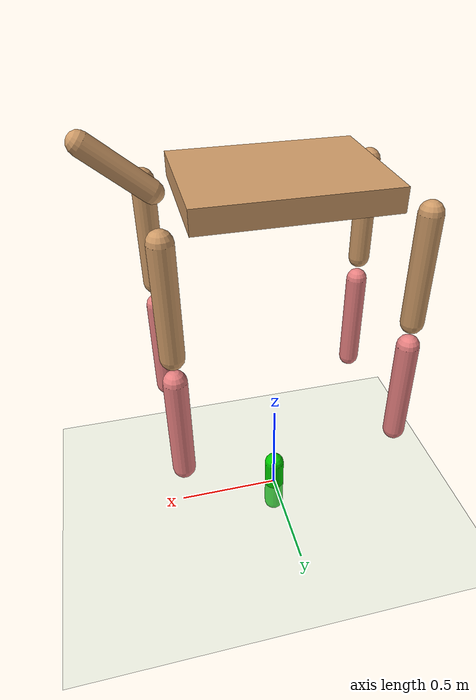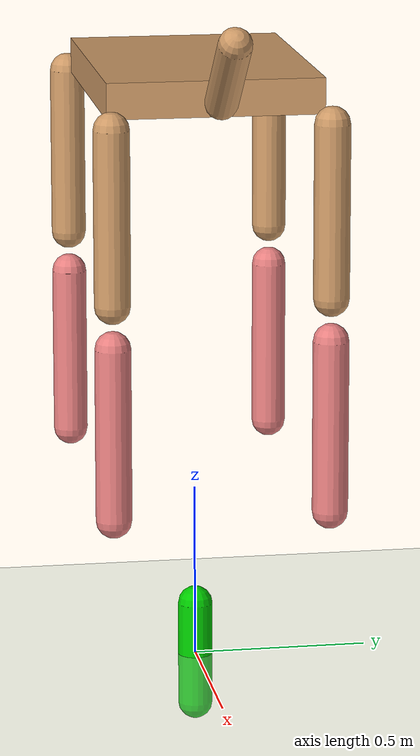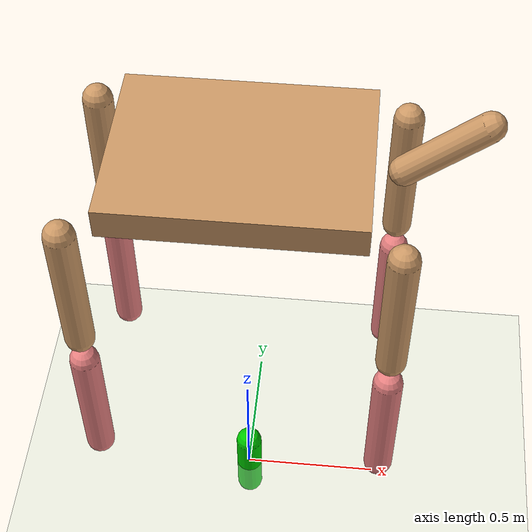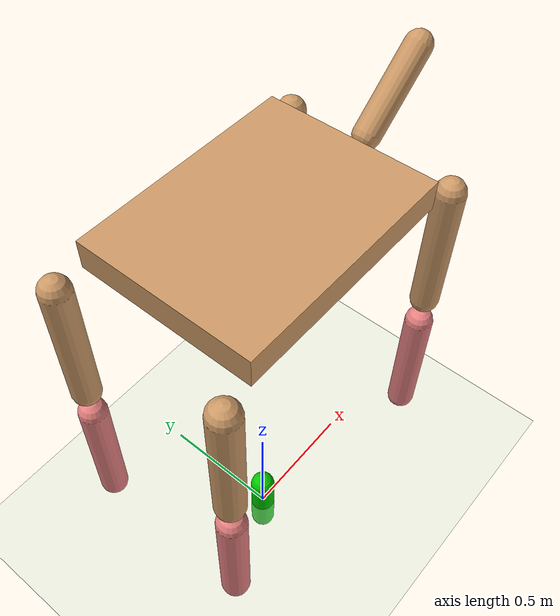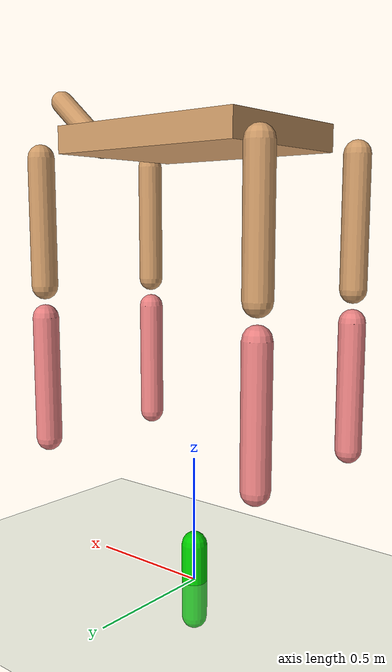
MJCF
<mujoco model="cheetah">
  <compiler angle="radian" coordinate="local" inertiafromgeom="true" settotalmass="14"/>
  <default>
    <joint armature=".1" damping=".01" limited="true" solimplimit="0 .8 .03" solreflimit=".02 1" stiffness="0"/>
    <geom conaffinity="0" condim="3" contype="1" friction=".4 .1 .1" rgba="0.8 0.6 .4 1" solimp="0.0 0.8 0.01" solref="0.02 1"/>
    <motor gear="50" ctrllimited="true" ctrlrange="-1 1"/>
  </default>
  <size nstack="300000" nuser_geom="1"/>
  <option gravity="0 0 -9.81" timestep="0.02"/>
  <asset>
    <texture builtin="gradient" height="100" rgb1="1 1 1" rgb2="0 0 0" type="skybox" width="100"/>
    <texture builtin="flat" height="1278" mark="cross" markrgb="1 1 1" name="texgeom" random="0.01" rgb1="0.8 0.6 0.4" rgb2="0.8 0.6 0.4" type="cube" width="127"/>
    <texture builtin="checker" height="100" name="texplane" rgb1="0 0 0" rgb2="0.8 0.8 0.8" type="2d" width="100"/>
    <material name="MatPlane" reflectance="0.5" shininess="1" specular="1" texrepeat="60 60" texture="texplane"/>
    <material name="geom" texture="texgeom" texuniform="true"/>
  </asset>
  <worldbody>
    <light cutoff="100" diffuse="1 1 1" dir="-0 0 -1.3" directional="true" exponent="1" pos="0 0 1.3" specular=".1 .1 .1"/>
    <geom conaffinity="1" condim="3" material="MatPlane" name="floor" pos="0 0 0" rgba="0.8 0.9 0.8 1" size="40 40 40" type="plane"/>

    <body name="current_vel_lin" pos="0 0 0">
      <geom conaffinity="8" contype="4" axisangle="1 0 0 0" name="current_vel_lin" pos="0 0 0" size="0.05 .15" type="capsule" rgba="0 0.8 0 1"/>
    </body>

    <body name="current_vel_rot" pos="0 0 0">
      <geom conaffinity="8" contype="4" axisangle="1 0 0 0" name="current_vel_rot" pos="0 0 0" size="0.05 .15" type="capsule" rgba="0.8 0.8 0 1"/>
    </body>

    <body name="target_vel_lin" pos="0 0 0">
      <geom conaffinity="8" contype="4" axisangle="1 0 0 0" name="target_vel_lin" pos="0 0 0" size="0.05 .15" type="capsule" rgba="0 0 0.8 1"/>
    </body>

    <body name="target_vel_rot" pos="0 0 0">
      <geom conaffinity="8" contype="4" axisangle="1 0 0 0" name="target_vel_rot" pos="0 0 0" size="0.05 .15" type="capsule" rgba="0.8 0 0.8 1"/>
    </body>

    <body name="torso" pos="0 0 1.7">
      <camera name="track" mode="trackcom" pos="0 -3 0.3" xyaxes="1 0 0 0 0 1"/>
      <joint armature="0" axis="1 0 0" damping="0" limited="false" name="root" pos="0 0 0" type="free"/>
      <geom name="torso" size=".4 .3 .05" type="box"/>
      <geom axisangle="0 1 0 .87" name="head" pos=".6 0 .1" size="0.046 .15" type="capsule"/>

      <body name="leg1_top" pos="-.5 .3 0">
        <joint axis="1 0 0" damping="6" name="leg1_top_side" pos="0 0 0" range="-1 1" type="hinge"/>
        <joint axis="0 1 0" damping="6" name="leg1_top_fwd" pos="0 0 0" range="-1 1" type="hinge"/>
        <geom axisangle="0 1 0 0" name="leg1_top" pos="0 0 -0.3" size="0.05 .24" type="capsule"/>
        <body name="leg1_mid" pos="0 0 -0.6">
          <joint axis="0 1 0" damping="6" name="leg1_mid" pos="0 0 0" range="-1 1" type="hinge"/>
          <geom axisangle="0 1 0 0" name="leg1_mid" pos="0 0 -0.3" rgba="0.9 0.5 0.5 1" size="0.05 .24" type="capsule"/>
        </body>
      </body>

      <body name="leg2_top" pos="-.5 -.3 0">
        <joint axis="1 0 0" damping="6" name="leg2_top_side" pos="0 0 0" range="-1 1" type="hinge"/>
        <joint axis="0 1 0" damping="6" name="leg2_top_fwd" pos="0 0 0" range="-1 1" type="hinge"/>
        <geom axisangle="0 1 0 0" name="leg2_top" pos="0 0 -0.3" size="0.05 .24" type="capsule"/>
        <body name="leg2_mid" pos="0 0 -0.6">
          <joint axis="0 1 0" damping="6" name="leg2_mid" pos="0 0 0" range="-1 1" type="hinge"/>
          <geom axisangle="0 1 0 0" name="leg2_mid" pos="0 0 -0.3" rgba="0.9 0.5 0.5 1" size="0.05 .24" type="capsule"/>
        </body>
      </body>

      <body name="leg3_top" pos=".5 .3 0">
        <joint axis="1 0 0" damping="6" name="leg3_top_side" pos="0 0 0" range="-1 1" type="hinge"/>
        <joint axis="0 1 0" damping="6" name="leg3_top_fwd" pos="0 0 0" range="-1 1" type="hinge"/>
        <geom axisangle="0 1 0 0" name="leg3_top" pos="0 0 -0.3" size="0.05 .24" type="capsule"/>
        <body name="leg3_mid" pos="0 0 -0.6">
          <joint axis="0 1 0" damping="6" name="leg3_mid" pos="0 0 0" range="-1 1" type="hinge"/>
          <geom axisangle="0 1 0 0" name="leg3_mid" pos="0 0 -0.3" rgba="0.9 0.5 0.5 1" size="0.05 .24" type="capsule"/>
        </body>
      </body>

      <body name="leg4_top" pos=".5 -.3 0">
        <joint axis="1 0 0" damping="6" name="leg4_top_side" pos="0 0 0" range="-1 1" type="hinge"/>
        <joint axis="0 1 0" damping="6" name="leg4_top_fwd" pos="0 0 0" range="-1 1" type="hinge"/>
        <geom axisangle="0 1 0 0" name="leg4_top" pos="0 0 -0.3" size="0.05 .24" type="capsule"/>
        <body name="leg4_mid" pos="0 0 -0.6">
          <joint axis="0 1 0" damping="6" name="leg4_mid" pos="0 0 0" range="-1 1" type="hinge"/>
          <geom axisangle="0 1 0 0" name="leg4_mid" pos="0 0 -0.3" rgba="0.9 0.5 0.5 1" size="0.05 .24" type="capsule"/>
        </body>
      </body>

    </body>
  </worldbody>
  <actuator>

    <motor joint="leg1_top_side" name="leg1_top_side"/>
    <motor joint="leg1_top_fwd" name="leg1_top_fwd"/>
    <motor joint="leg1_mid" name="leg1_mid"/>

    <motor joint="leg2_top_side" name="leg2_top_side"/>
    <motor joint="leg2_top_fwd" name="leg2_top_fwd"/>
    <motor joint="leg2_mid" name="leg2_mid"/>

    <motor joint="leg3_top_side" name="leg3_top_side"/>
    <motor joint="leg3_top_fwd" name="leg3_top_fwd"/>
    <motor joint="leg3_mid" name="leg3_mid"/>

    <motor joint="leg4_top_side" name="leg4_top_side"/>
    <motor joint="leg4_top_fwd" name="leg4_top_fwd"/>
    <motor joint="leg4_mid" name="leg4_mid"/>

  </actuator>
</mujoco>
